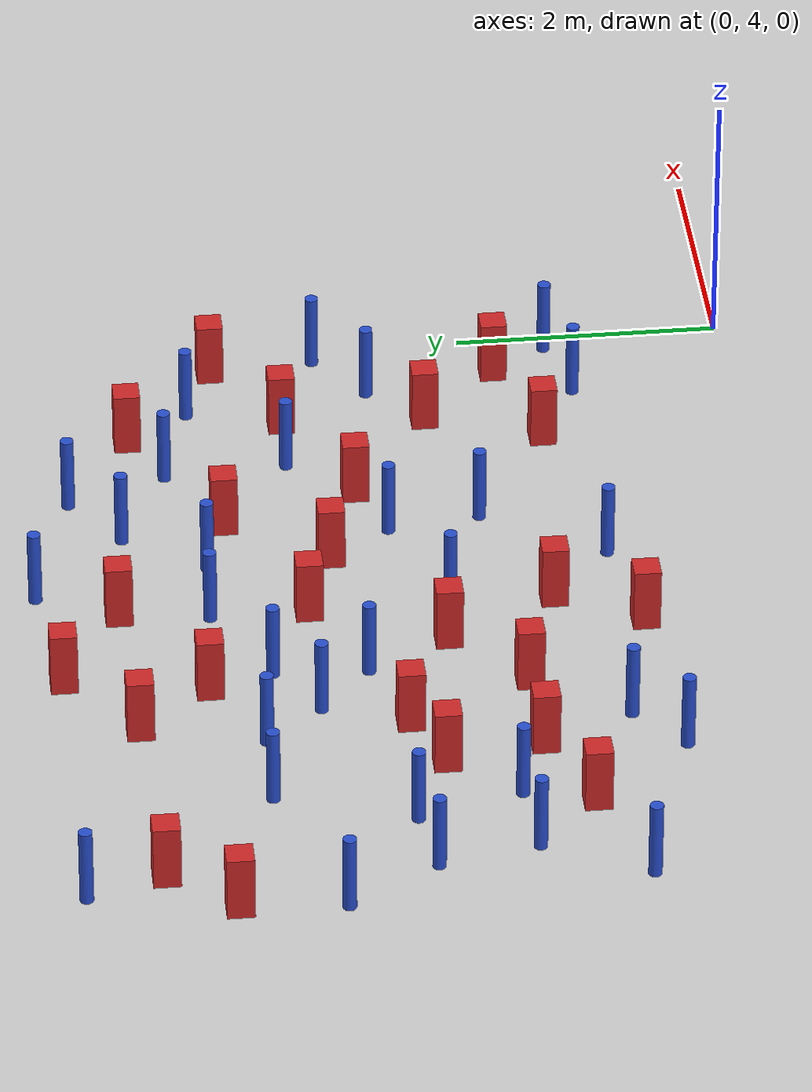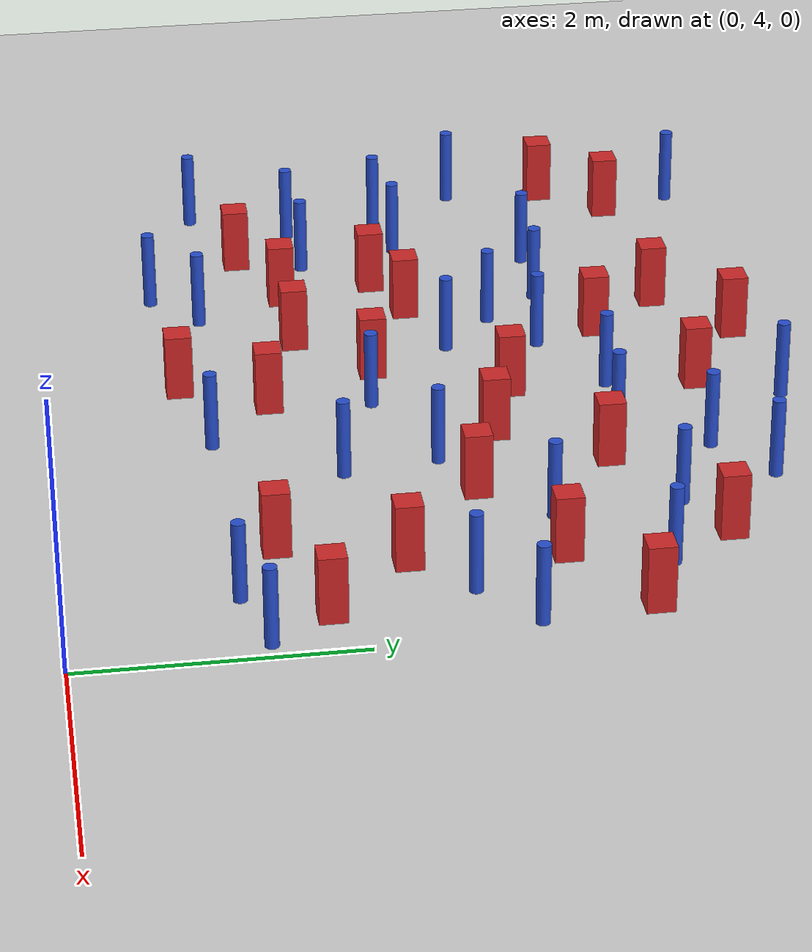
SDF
<sdf version="1.6">
 <world name="default">
  <model name="ground_plane">
   <static>1</static>
   <link name="link">
    <collision name="collision">
     <geometry><plane><normal>0 0 1</normal><size>100 100</size></plane></geometry>
     <surface><friction><ode><mu>100</mu><mu2>50</mu2></ode></friction></surface>
    </collision>
    <visual name="visual">
     <cast_shadows>0</cast_shadows>
     <geometry><plane><normal>0 0 1</normal><size>100 100</size></plane></geometry>
     <material>
      <ambient>1.0 1.0 1.0 1.0</ambient>
      <diffuse>0.8 0.8 0.8 1.0</diffuse>
      <specular>0.01 0.01 0.01 1.000000</specular>
     </material>
    </visual>
   </link>
  </model>
  <model name="pole_obstacle1">
   <static>true</static>
   <pose>-5.75798451812 6.16089119048 7.38925637345e-09 -8.47170692796e-08 1.24976764786e-08 -1.74513093032e-07</pose>
   <link name="link">
    <pose>0 0 0.3 0 -0 0</pose>
    <inertial>
     <mass>1</mass>
     <inertia><ixx>0.145833</ixx><ixy>0</ixy><ixz>0</ixz><iyy>0.145833</iyy><iyz>0</iyz><izz>0.125</izz></inertia>
    </inertial>
    <collision name="collision">
     <geometry><cylinder><radius>0.05</radius><length>.6</length></cylinder></geometry>
    </collision>
    <visual name="visual">
     <geometry><cylinder><radius>0.05</radius><length>.6</length></cylinder></geometry>
     <material>
      <script><name>Gazebo/Blue</name><uri>file://media/materials/scripts/gazebo.material</uri></script>
     </material>
    </visual>
   </link>
  </model>
  <model name="pole_obstacle2">
   <static>true</static>
   <pose>-5.64459293224 7.93843499499 7.38925637345e-09 -8.47170692796e-08 1.24976764786e-08 -1.74513093032e-07</pose>
   <link name="link">
    <pose>0 0 0.3 0 -0 0</pose>
    <inertial>
     <mass>1</mass>
     <inertia><ixx>0.145833</ixx><ixy>0</ixy><ixz>0</ixz><iyy>0.145833</iyy><iyz>0</iyz><izz>0.125</izz></inertia>
    </inertial>
    <collision name="collision">
     <geometry><cylinder><radius>0.05</radius><length>.6</length></cylinder></geometry>
    </collision>
    <visual name="visual">
     <geometry><cylinder><radius>0.05</radius><length>.6</length></cylinder></geometry>
     <material>
      <script><name>Gazebo/Blue</name><uri>file://media/materials/scripts/gazebo.material</uri></script>
     </material>
    </visual>
   </link>
  </model>
  <model name="pole_obstacle6">
   <static>true</static>
   <pose>-0.142269460352 5.34725949788 7.38925637345e-09 -8.47170692799e-08 1.24976765043e-08 -1.74513093019e-07</pose>
   <link name="link">
    <pose>0 0 0.3 0 -0 0</pose>
    <inertial>
     <mass>1</mass>
     <inertia><ixx>0.145833</ixx><ixy>0</ixy><ixz>0</ixz><iyy>0.145833</iyy><iyz>0</iyz><izz>0.125</izz></inertia>
    </inertial>
    <collision name="collision">
     <geometry><cylinder><radius>0.05</radius><length>.6</length></cylinder></geometry>
    </collision>
    <visual name="visual">
     <geometry><cylinder><radius>0.05</radius><length>.6</length></cylinder></geometry>
     <material>
      <script><name>Gazebo/Blue</name><uri>file://media/materials/scripts/gazebo.material</uri></script>
     </material>
    </visual>
   </link>
  </model>
  <model name="square_post_obstacle9">
   <static>true</static>
   <pose>-3.77084339241 5.02417634701 1.91545236811e-07 -7.35059704564e-06 1.12565212e-07 2.39332434364e-05</pose>
   <link name="link">
    <pose>0 0 0.25 0 -0 0</pose>
    <inertial>
     <mass>100</mass>
     <inertia>
      <ixx>0.166667</ixx>
      <ixy>0</ixy>
      <ixz>0</ixz>
      <iyy>0.166667</iyy>
      <iyz>0</iyz>
      <izz>0.166667</izz>
     </inertia>
    </inertial>
    <collision name="collision"><geometry><box><size>.2 .2 .5</size></box></geometry></collision>
    <visual name="visual">
     <geometry><box><size>.2 .2 .5</size></box></geometry>
     <material>
      <script><name>Gazebo/Red</name><uri>file://media/materials/scripts/gazebo.material</uri></script>
     </material>
    </visual>
   </link>
  </model>
  <model name="pole_obstacle9">
   <static>true</static>
   <pose>-2.88459928265 5.19399975139 7.38925637345e-09 -8.47170692798e-08 1.24976765033e-08 -1.74513093019e-07</pose>
   <link name="link">
    <pose>0 0 0.3 0 -0 0</pose>
    <inertial>
     <mass>1</mass>
     <inertia><ixx>0.145833</ixx><ixy>0</ixy><ixz>0</ixz><iyy>0.145833</iyy><iyz>0</iyz><izz>0.125</izz></inertia>
    </inertial>
    <collision name="collision">
     <geometry><cylinder><radius>0.05</radius><length>.6</length></cylinder></geometry>
    </collision>
    <visual name="visual">
     <geometry><cylinder><radius>0.05</radius><length>.6</length></cylinder></geometry>
     <material>
      <script><name>Gazebo/Blue</name><uri>file://media/materials/scripts/gazebo.material</uri></script>
     </material>
    </visual>
   </link>
  </model>
  <model name="square_post_obstacle18">
   <static>true</static>
   <pose>-5.907547881 5.64567180726 1.91545236811e-07 -7.35059704564e-06 1.12565212e-07 2.39332434364e-05</pose>
   <link name="link">
    <pose>0 0 0.25 0 -0 0</pose>
    <inertial>
     <mass>100</mass>
     <inertia>
      <ixx>0.166667</ixx>
      <ixy>0</ixy>
      <ixz>0</ixz>
      <iyy>0.166667</iyy>
      <iyz>0</iyz>
      <izz>0.166667</izz>
     </inertia>
    </inertial>
    <collision name="collision"><geometry><box><size>.2 .2 .5</size></box></geometry></collision>
    <visual name="visual">
     <geometry><box><size>.2 .2 .5</size></box></geometry>
     <material>
      <script><name>Gazebo/Red</name><uri>file://media/materials/scripts/gazebo.material</uri></script>
     </material>
    </visual>
   </link>
  </model>
  <model name="pole_obstacle10">
   <static>true</static>
   <pose>-6.93408362777 7.51889811465 7.38925637345e-09 -8.47170692796e-08 1.24976764786e-08 -1.74513093032e-07</pose>
   <link name="link">
    <pose>0 0 0.3 0 -0 0</pose>
    <inertial>
     <mass>1</mass>
     <inertia><ixx>0.145833</ixx><ixy>0</ixy><ixz>0</ixz><iyy>0.145833</iyy><iyz>0</iyz><izz>0.125</izz></inertia>
    </inertial>
    <collision name="collision">
     <geometry><cylinder><radius>0.05</radius><length>.6</length></cylinder></geometry>
    </collision>
    <visual name="visual">
     <geometry><cylinder><radius>0.05</radius><length>.6</length></cylinder></geometry>
     <material>
      <script><name>Gazebo/Blue</name><uri>file://media/materials/scripts/gazebo.material</uri></script>
     </material>
    </visual>
   </link>
  </model>
  <model name="pole_obstacle11">
   <static>true</static>
   <pose>-3.35549708383 6.42012457529 7.38925637345e-09 -8.47170692794e-08 1.24976764468e-08 -1.7451309304e-07</pose>
   <link name="link">
    <pose>0 0 0.3 0 -0 0</pose>
    <inertial>
     <mass>1</mass>
     <inertia><ixx>0.145833</ixx><ixy>0</ixy><ixz>0</ixz><iyy>0.145833</iyy><iyz>0</iyz><izz>0.125</izz></inertia>
    </inertial>
    <collision name="collision">
     <geometry><cylinder><radius>0.05</radius><length>.6</length></cylinder></geometry>
    </collision>
    <visual name="visual">
     <geometry><cylinder><radius>0.05</radius><length>.6</length></cylinder></geometry>
     <material>
      <script><name>Gazebo/Blue</name><uri>file://media/materials/scripts/gazebo.material</uri></script>
     </material>
    </visual>
   </link>
  </model>
  <model name="pole_obstacle17">
   <static>true</static>
   <pose>-2.78437330864 8.17089390796 7.38925637345e-09 -8.47170692793e-08 1.24976764408e-08 -1.74513093041e-07</pose>
   <link name="link">
    <pose>0 0 0.3 0 -0 0</pose>
    <inertial>
     <mass>1</mass>
     <inertia><ixx>0.145833</ixx><ixy>0</ixy><ixz>0</ixz><iyy>0.145833</iyy><iyz>0</iyz><izz>0.125</izz></inertia>
    </inertial>
    <collision name="collision">
     <geometry><cylinder><radius>0.05</radius><length>.6</length></cylinder></geometry>
    </collision>
    <visual name="visual">
     <geometry><cylinder><radius>0.05</radius><length>.6</length></cylinder></geometry>
     <material>
      <script><name>Gazebo/Blue</name><uri>file://media/materials/scripts/gazebo.material</uri></script>
     </material>
    </visual>
   </link>
  </model>
  <model name="pole_obstacle28">
   <static>true</static>
   <pose>-4.89445261523 5.26536856166 7.38925637345e-09 -8.47170692796e-08 1.24976764786e-08 -1.74513093032e-07</pose>
   <link name="link">
    <pose>0 0 0.3 0 -0 0</pose>
    <inertial>
     <mass>1</mass>
     <inertia><ixx>0.145833</ixx><ixy>0</ixy><ixz>0</ixz><iyy>0.145833</iyy><iyz>0</iyz><izz>0.125</izz></inertia>
    </inertial>
    <collision name="collision">
     <geometry><cylinder><radius>0.05</radius><length>.6</length></cylinder></geometry>
    </collision>
    <visual name="visual">
     <geometry><cylinder><radius>0.05</radius><length>.6</length></cylinder></geometry>
     <material>
      <script><name>Gazebo/Blue</name><uri>file://media/materials/scripts/gazebo.material</uri></script>
     </material>
    </visual>
   </link>
  </model>
  <model name="square_post_obstacle37">
   <static>true</static>
   <pose>-3.42619686603 5.66013530512 1.91545236811e-07 -7.35059704564e-06 1.12565212e-07 2.39332434364e-05</pose>
   <link name="link">
    <pose>0 0 0.25 0 -0 0</pose>
    <inertial>
     <mass>100</mass>
     <inertia>
      <ixx>0.166667</ixx>
      <ixy>0</ixy>
      <ixz>0</ixz>
      <iyy>0.166667</iyy>
      <iyz>0</iyz>
      <izz>0.166667</izz>
     </inertia>
    </inertial>
    <collision name="collision"><geometry><box><size>.2 .2 .5</size></box></geometry></collision>
    <visual name="visual">
     <geometry><box><size>.2 .2 .5</size></box></geometry>
     <material>
      <script><name>Gazebo/Red</name><uri>file://media/materials/scripts/gazebo.material</uri></script>
     </material>
    </visual>
   </link>
  </model>
  <model name="square_post_obstacle41">
   <static>true</static>
   <pose>-1.34152453579 5.49894656143 1.91545236811e-07 -7.35059704564e-06 1.12565212e-07 2.39332434364e-05</pose>
   <link name="link">
    <pose>0 0 0.25 0 -0 0</pose>
    <inertial>
     <mass>100</mass>
     <inertia>
      <ixx>0.166667</ixx>
      <ixy>0</ixy>
      <ixz>0</ixz>
      <iyy>0.166667</iyy>
      <iyz>0</iyz>
      <izz>0.166667</izz>
     </inertia>
    </inertial>
    <collision name="collision"><geometry><box><size>.2 .2 .5</size></box></geometry></collision>
    <visual name="visual">
     <geometry><box><size>.2 .2 .5</size></box></geometry>
     <material>
      <script><name>Gazebo/Red</name><uri>file://media/materials/scripts/gazebo.material</uri></script>
     </material>
    </visual>
   </link>
  </model>
  <model name="pole_obstacle45">
   <static>true</static>
   <pose>-1.87968677476 9.14246488816 7.38925637345e-09 -8.47170692798e-08 1.24976764881e-08 -1.74513093027e-07</pose>
   <link name="link">
    <pose>0 0 0.3 0 -0 0</pose>
    <inertial>
     <mass>1</mass>
     <inertia><ixx>0.145833</ixx><ixy>0</ixy><ixz>0</ixz><iyy>0.145833</iyy><iyz>0</iyz><izz>0.125</izz></inertia>
    </inertial>
    <collision name="collision">
     <geometry><cylinder><radius>0.05</radius><length>.6</length></cylinder></geometry>
    </collision>
    <visual name="visual">
     <geometry><cylinder><radius>0.05</radius><length>.6</length></cylinder></geometry>
     <material>
      <script><name>Gazebo/Blue</name><uri>file://media/materials/scripts/gazebo.material</uri></script>
     </material>
    </visual>
   </link>
  </model>
  <model name="pole_obstacle61">
   <static>true</static>
   <pose>-1.58940500888 8.39699597561 7.38925637345e-09 -8.47170692798e-08 1.24976764881e-08 -1.74513093027e-07</pose>
   <link name="link">
    <pose>0 0 0.3 0 -0 0</pose>
    <inertial>
     <mass>1</mass>
     <inertia><ixx>0.145833</ixx><ixy>0</ixy><ixz>0</ixz><iyy>0.145833</iyy><iyz>0</iyz><izz>0.125</izz></inertia>
    </inertial>
    <collision name="collision">
     <geometry><cylinder><radius>0.05</radius><length>.6</length></cylinder></geometry>
    </collision>
    <visual name="visual">
     <geometry><cylinder><radius>0.05</radius><length>.6</length></cylinder></geometry>
     <material>
      <script><name>Gazebo/Blue</name><uri>file://media/materials/scripts/gazebo.material</uri></script>
     </material>
    </visual>
   </link>
  </model>
  <model name="pole_obstacle63">
   <static>true</static>
   <pose>-2.43554083495 6.78606325257 7.38925637345e-09 -8.47170692798e-08 1.24976765033e-08 -1.74513093019e-07</pose>
   <link name="link">
    <pose>0 0 0.3 0 -0 0</pose>
    <inertial>
     <mass>1</mass>
     <inertia><ixx>0.145833</ixx><ixy>0</ixy><ixz>0</ixz><iyy>0.145833</iyy><iyz>0</iyz><izz>0.125</izz></inertia>
    </inertial>
    <collision name="collision">
     <geometry><cylinder><radius>0.05</radius><length>.6</length></cylinder></geometry>
    </collision>
    <visual name="visual">
     <geometry><cylinder><radius>0.05</radius><length>.6</length></cylinder></geometry>
     <material>
      <script><name>Gazebo/Blue</name><uri>file://media/materials/scripts/gazebo.material</uri></script>
     </material>
    </visual>
   </link>
  </model>
  <model name="square_post_obstacle74">
   <static>true</static>
   <pose>-4.76536382537 8.82146773638 1.91545236811e-07 -7.35059704564e-06 1.12565212e-07 2.39332434364e-05</pose>
   <link name="link">
    <pose>0 0 0.25 0 -0 0</pose>
    <inertial>
     <mass>100</mass>
     <inertia>
      <ixx>0.166667</ixx>
      <ixy>0</ixy>
      <ixz>0</ixz>
      <iyy>0.166667</iyy>
      <iyz>0</iyz>
      <izz>0.166667</izz>
     </inertia>
    </inertial>
    <collision name="collision"><geometry><box><size>.2 .2 .5</size></box></geometry></collision>
    <visual name="visual">
     <geometry><box><size>.2 .2 .5</size></box></geometry>
     <material>
      <script><name>Gazebo/Red</name><uri>file://media/materials/scripts/gazebo.material</uri></script>
     </material>
    </visual>
   </link>
  </model>
  <model name="pole_obstacle69">
   <static>true</static>
   <pose>-6.67104018193 9.34412250246 7.38925637345e-09 -8.471706928e-08 1.24976765081e-08 -1.74513093015e-07</pose>
   <link name="link">
    <pose>0 0 0.3 0 -0 0</pose>
    <inertial>
     <mass>1</mass>
     <inertia><ixx>0.145833</ixx><ixy>0</ixy><ixz>0</ixz><iyy>0.145833</iyy><iyz>0</iyz><izz>0.125</izz></inertia>
    </inertial>
    <collision name="collision">
     <geometry><cylinder><radius>0.05</radius><length>.6</length></cylinder></geometry>
    </collision>
    <visual name="visual">
     <geometry><cylinder><radius>0.05</radius><length>.6</length></cylinder></geometry>
     <material>
      <script><name>Gazebo/Blue</name><uri>file://media/materials/scripts/gazebo.material</uri></script>
     </material>
    </visual>
   </link>
  </model>
  <model name="pole_obstacle79">
   <static>true</static>
   <pose>-6.37893633284 6.10825948809 7.38925637345e-09 -8.47170692796e-08 1.24976764786e-08 -1.74513093032e-07</pose>
   <link name="link">
    <pose>0 0 0.3 0 -0 0</pose>
    <inertial>
     <mass>1</mass>
     <inertia><ixx>0.145833</ixx><ixy>0</ixy><ixz>0</ixz><iyy>0.145833</iyy><iyz>0</iyz><izz>0.125</izz></inertia>
    </inertial>
    <collision name="collision">
     <geometry><cylinder><radius>0.05</radius><length>.6</length></cylinder></geometry>
    </collision>
    <visual name="visual">
     <geometry><cylinder><radius>0.05</radius><length>.6</length></cylinder></geometry>
     <material>
      <script><name>Gazebo/Blue</name><uri>file://media/materials/scripts/gazebo.material</uri></script>
     </material>
    </visual>
   </link>
  </model>
  <model name="pole_obstacle82">
   <static>true</static>
   <pose>-6.76883829647 5.34321811993 7.38925637345e-09 -8.47170692796e-08 1.24976764786e-08 -1.74513093032e-07</pose>
   <link name="link">
    <pose>0 0 0.3 0 -0 0</pose>
    <inertial>
     <mass>1</mass>
     <inertia><ixx>0.145833</ixx><ixy>0</ixy><ixz>0</ixz><iyy>0.145833</iyy><iyz>0</iyz><izz>0.125</izz></inertia>
    </inertial>
    <collision name="collision">
     <geometry><cylinder><radius>0.05</radius><length>.6</length></cylinder></geometry>
    </collision>
    <visual name="visual">
     <geometry><cylinder><radius>0.05</radius><length>.6</length></cylinder></geometry>
     <material>
      <script><name>Gazebo/Blue</name><uri>file://media/materials/scripts/gazebo.material</uri></script>
     </material>
    </visual>
   </link>
  </model>
  <model name="pole_obstacle87">
   <static>true</static>
   <pose>-2.37140153594 8.77700415921 7.38925637345e-09 -8.47170692793e-08 1.24976764408e-08 -1.74513093041e-07</pose>
   <link name="link">
    <pose>0 0 0.3 0 -0 0</pose>
    <inertial>
     <mass>1</mass>
     <inertia><ixx>0.145833</ixx><ixy>0</ixy><ixz>0</ixz><iyy>0.145833</iyy><iyz>0</iyz><izz>0.125</izz></inertia>
    </inertial>
    <collision name="collision">
     <geometry><cylinder><radius>0.05</radius><length>.6</length></cylinder></geometry>
    </collision>
    <visual name="visual">
     <geometry><cylinder><radius>0.05</radius><length>.6</length></cylinder></geometry>
     <material>
      <script><name>Gazebo/Blue</name><uri>file://media/materials/scripts/gazebo.material</uri></script>
     </material>
    </visual>
   </link>
  </model>
  <model name="square_post_obstacle82">
   <static>true</static>
   <pose>-1.11900436968 8.64420854947 1.91545236811e-07 -7.35059704564e-06 1.12565212e-07 2.39332434364e-05</pose>
   <link name="link">
    <pose>0 0 0.25 0 -0 0</pose>
    <inertial>
     <mass>100</mass>
     <inertia>
      <ixx>0.166667</ixx>
      <ixy>0</ixy>
      <ixz>0</ixz>
      <iyy>0.166667</iyy>
      <iyz>0</iyz>
      <izz>0.166667</izz>
     </inertia>
    </inertial>
    <collision name="collision"><geometry><box><size>.2 .2 .5</size></box></geometry></collision>
    <visual name="visual">
     <geometry><box><size>.2 .2 .5</size></box></geometry>
     <material>
      <script><name>Gazebo/Red</name><uri>file://media/materials/scripts/gazebo.material</uri></script>
     </material>
    </visual>
   </link>
  </model>
  <model name="square_post_obstacle83">
   <static>true</static>
   <pose>-2.27208994885 8.00546882071 1.91545236811e-07 -7.35059704564e-06 1.12565212e-07 2.39332434364e-05</pose>
   <link name="link">
    <pose>0 0 0.25 0 -0 0</pose>
    <inertial>
     <mass>100</mass>
     <inertia>
      <ixx>0.166667</ixx>
      <ixy>0</ixy>
      <ixz>0</ixz>
      <iyy>0.166667</iyy>
      <iyz>0</iyz>
      <izz>0.166667</izz>
     </inertia>
    </inertial>
    <collision name="collision"><geometry><box><size>.2 .2 .5</size></box></geometry></collision>
    <visual name="visual">
     <geometry><box><size>.2 .2 .5</size></box></geometry>
     <material>
      <script><name>Gazebo/Red</name><uri>file://media/materials/scripts/gazebo.material</uri></script>
     </material>
    </visual>
   </link>
  </model>
  <model name="pole_obstacle96">
   <static>true</static>
   <pose>-5.98101875136 6.9330406488 7.38925637345e-09 -8.47170692796e-08 1.24976764786e-08 -1.74513093032e-07</pose>
   <link name="link">
    <pose>0 0 0.3 0 -0 0</pose>
    <inertial>
     <mass>1</mass>
     <inertia><ixx>0.145833</ixx><ixy>0</ixy><ixz>0</ixz><iyy>0.145833</iyy><iyz>0</iyz><izz>0.125</izz></inertia>
    </inertial>
    <collision name="collision">
     <geometry><cylinder><radius>0.05</radius><length>.6</length></cylinder></geometry>
    </collision>
    <visual name="visual">
     <geometry><cylinder><radius>0.05</radius><length>.6</length></cylinder></geometry>
     <material>
      <script><name>Gazebo/Blue</name><uri>file://media/materials/scripts/gazebo.material</uri></script>
     </material>
    </visual>
   </link>
  </model>
  <model name="square_post_obstacle84">
   <static>true</static>
   <pose>-3.35060813351 8.87156421134 1.91545236811e-07 -7.35059704564e-06 1.12565212e-07 2.39332434364e-05</pose>
   <link name="link">
    <pose>0 0 0.25 0 -0 0</pose>
    <inertial>
     <mass>100</mass>
     <inertia>
      <ixx>0.166667</ixx>
      <ixy>0</ixy>
      <ixz>0</ixz>
      <iyy>0.166667</iyy>
      <iyz>0</iyz>
      <izz>0.166667</izz>
     </inertia>
    </inertial>
    <collision name="collision"><geometry><box><size>.2 .2 .5</size></box></geometry></collision>
    <visual name="visual">
     <geometry><box><size>.2 .2 .5</size></box></geometry>
     <material>
      <script><name>Gazebo/Red</name><uri>file://media/materials/scripts/gazebo.material</uri></script>
     </material>
    </visual>
   </link>
  </model>
  <model name="square_post_obstacle85">
   <static>true</static>
   <pose>-3.42800563524 7.47565866298 1.91545236811e-07 -7.35059704564e-06 1.12565212e-07 2.39332434364e-05</pose>
   <link name="link">
    <pose>0 0 0.25 0 -0 0</pose>
    <inertial>
     <mass>100</mass>
     <inertia>
      <ixx>0.166667</ixx>
      <ixy>0</ixy>
      <ixz>0</ixz>
      <iyy>0.166667</iyy>
      <iyz>0</iyz>
      <izz>0.166667</izz>
     </inertia>
    </inertial>
    <collision name="collision"><geometry><box><size>.2 .2 .5</size></box></geometry></collision>
    <visual name="visual">
     <geometry><box><size>.2 .2 .5</size></box></geometry>
     <material>
      <script><name>Gazebo/Red</name><uri>file://media/materials/scripts/gazebo.material</uri></script>
     </material>
    </visual>
   </link>
  </model>
  <model name="square_post_obstacle86">
   <static>true</static>
   <pose>-0.988414125935 7.46035929123 1.91545236811e-07 -7.35059704564e-06 1.12565212e-07 2.39332434364e-05</pose>
   <link name="link">
    <pose>0 0 0.25 0 -0 0</pose>
    <inertial>
     <mass>100</mass>
     <inertia>
      <ixx>0.166667</ixx>
      <ixy>0</ixy>
      <ixz>0</ixz>
      <iyy>0.166667</iyy>
      <iyz>0</iyz>
      <izz>0.166667</izz>
     </inertia>
    </inertial>
    <collision name="collision"><geometry><box><size>.2 .2 .5</size></box></geometry></collision>
    <visual name="visual">
     <geometry><box><size>.2 .2 .5</size></box></geometry>
     <material>
      <script><name>Gazebo/Red</name><uri>file://media/materials/scripts/gazebo.material</uri></script>
     </material>
    </visual>
   </link>
  </model>
  <model name="pole_obstacle97">
   <static>true</static>
   <pose>-0.156315826502 7.14604382505 7.38925637345e-09 -8.47170692799e-08 1.24976765043e-08 -1.74513093019e-07</pose>
   <link name="link">
    <pose>0 0 0.3 0 -0 0</pose>
    <inertial>
     <mass>1</mass>
     <inertia><ixx>0.145833</ixx><ixy>0</ixy><ixz>0</ixz><iyy>0.145833</iyy><iyz>0</iyz><izz>0.125</izz></inertia>
    </inertial>
    <collision name="collision">
     <geometry><cylinder><radius>0.05</radius><length>.6</length></cylinder></geometry>
    </collision>
    <visual name="visual">
     <geometry><cylinder><radius>0.05</radius><length>.6</length></cylinder></geometry>
     <material>
      <script><name>Gazebo/Blue</name><uri>file://media/materials/scripts/gazebo.material</uri></script>
     </material>
    </visual>
   </link>
  </model>
  <model name="square_post_obstacle91">
   <static>true</static>
   <pose>-1.03266431261 6.36968380074 1.91545236811e-07 -7.35059704564e-06 1.12565212e-07 2.39332434364e-05</pose>
   <link name="link">
    <pose>0 0 0.25 0 -0 0</pose>
    <inertial>
     <mass>100</mass>
     <inertia>
      <ixx>0.166667</ixx>
      <ixy>0</ixy>
      <ixz>0</ixz>
      <iyy>0.166667</iyy>
      <iyz>0</iyz>
      <izz>0.166667</izz>
     </inertia>
    </inertial>
    <collision name="collision"><geometry><box><size>.2 .2 .5</size></box></geometry></collision>
    <visual name="visual">
     <geometry><box><size>.2 .2 .5</size></box></geometry>
     <material>
      <script><name>Gazebo/Red</name><uri>file://media/materials/scripts/gazebo.material</uri></script>
     </material>
    </visual>
   </link>
  </model>
  <model name="square_post_obstacle95">
   <static>true</static>
   <pose>-4.42673206477 5.95637237986 1.91545236811e-07 -7.35059704564e-06 1.12565212e-07 2.39332434364e-05</pose>
   <link name="link">
    <pose>0 0 0.25 0 -0 0</pose>
    <inertial>
     <mass>100</mass>
     <inertia>
      <ixx>0.166667</ixx>
      <ixy>0</ixy>
      <ixz>0</ixz>
      <iyy>0.166667</iyy>
      <iyz>0</iyz>
      <izz>0.166667</izz>
     </inertia>
    </inertial>
    <collision name="collision"><geometry><box><size>.2 .2 .5</size></box></geometry></collision>
    <visual name="visual">
     <geometry><box><size>.2 .2 .5</size></box></geometry>
     <material>
      <script><name>Gazebo/Red</name><uri>file://media/materials/scripts/gazebo.material</uri></script>
     </material>
    </visual>
   </link>
  </model>
  <model name="pole_obstacle108">
   <static>true</static>
   <pose>-4.18735906118 7.10542070908 7.38925637345e-09 -8.47170692796e-08 1.24976764786e-08 -1.74513093032e-07</pose>
   <link name="link">
    <pose>0 0 0.3 0 -0 0</pose>
    <inertial>
     <mass>1</mass>
     <inertia><ixx>0.145833</ixx><ixy>0</ixy><ixz>0</ixz><iyy>0.145833</iyy><iyz>0</iyz><izz>0.125</izz></inertia>
    </inertial>
    <collision name="collision">
     <geometry><cylinder><radius>0.05</radius><length>.6</length></cylinder></geometry>
    </collision>
    <visual name="visual">
     <geometry><cylinder><radius>0.05</radius><length>.6</length></cylinder></geometry>
     <material>
      <script><name>Gazebo/Blue</name><uri>file://media/materials/scripts/gazebo.material</uri></script>
     </material>
    </visual>
   </link>
  </model>
  <model name="square_post_obstacle97">
   <static>true</static>
   <pose>-6.48767562546 8.76947307244 1.91545236811e-07 -7.35059704564e-06 1.12565212e-07 2.39332434364e-05</pose>
   <link name="link">
    <pose>0 0 0.25 0 -0 0</pose>
    <inertial>
     <mass>100</mass>
     <inertia>
      <ixx>0.166667</ixx>
      <ixy>0</ixy>
      <ixz>0</ixz>
      <iyy>0.166667</iyy>
      <iyz>0</iyz>
      <izz>0.166667</izz>
     </inertia>
    </inertial>
    <collision name="collision"><geometry><box><size>.2 .2 .5</size></box></geometry></collision>
    <visual name="visual">
     <geometry><box><size>.2 .2 .5</size></box></geometry>
     <material>
      <script><name>Gazebo/Red</name><uri>file://media/materials/scripts/gazebo.material</uri></script>
     </material>
    </visual>
   </link>
  </model>
  <model name="square_post_obstacle98">
   <static>true</static>
   <pose>-6.88664513375 8.28502717384 1.91545236811e-07 -7.35059704564e-06 1.12565212e-07 2.39332434364e-05</pose>
   <link name="link">
    <pose>0 0 0.25 0 -0 0</pose>
    <inertial>
     <mass>100</mass>
     <inertia>
      <ixx>0.166667</ixx>
      <ixy>0</ixy>
      <ixz>0</ixz>
      <iyy>0.166667</iyy>
      <iyz>0</iyz>
      <izz>0.166667</izz>
     </inertia>
    </inertial>
    <collision name="collision"><geometry><box><size>.2 .2 .5</size></box></geometry></collision>
    <visual name="visual">
     <geometry><box><size>.2 .2 .5</size></box></geometry>
     <material>
      <script><name>Gazebo/Red</name><uri>file://media/materials/scripts/gazebo.material</uri></script>
     </material>
    </visual>
   </link>
  </model>
  <model name="square_post_obstacle100">
   <static>true</static>
   <pose>-3.86610409709 6.48951473406 1.91545236811e-07 -7.35059704564e-06 1.12565212e-07 2.39332434364e-05</pose>
   <link name="link">
    <pose>0 0 0.25 0 -0 0</pose>
    <inertial>
     <mass>100</mass>
     <inertia>
      <ixx>0.166667</ixx>
      <ixy>0</ixy>
      <ixz>0</ixz>
      <iyy>0.166667</iyy>
      <iyz>0</iyz>
      <izz>0.166667</izz>
     </inertia>
    </inertial>
    <collision name="collision"><geometry><box><size>.2 .2 .5</size></box></geometry></collision>
    <visual name="visual">
     <geometry><box><size>.2 .2 .5</size></box></geometry>
     <material>
      <script><name>Gazebo/Red</name><uri>file://media/materials/scripts/gazebo.material</uri></script>
     </material>
    </visual>
   </link>
  </model>
  <model name="pole_obstacle131">
   <static>true</static>
   <pose>-6.53478810473 6.84542863954 7.38925637345e-09 -8.47170692796e-08 1.24976764786e-08 -1.74513093032e-07</pose>
   <link name="link">
    <pose>0 0 0.3 0 -0 0</pose>
    <inertial>
     <mass>1</mass>
     <inertia><ixx>0.145833</ixx><ixy>0</ixy><ixz>0</ixz><iyy>0.145833</iyy><iyz>0</iyz><izz>0.125</izz></inertia>
    </inertial>
    <collision name="collision">
     <geometry><cylinder><radius>0.05</radius><length>.6</length></cylinder></geometry>
    </collision>
    <visual name="visual">
     <geometry><cylinder><radius>0.05</radius><length>.6</length></cylinder></geometry>
     <material>
      <script><name>Gazebo/Blue</name><uri>file://media/materials/scripts/gazebo.material</uri></script>
     </material>
    </visual>
   </link>
  </model>
  <model name="pole_obstacle136">
   <static>true</static>
   <pose>-4.15243492606 7.80592799234 7.38925637345e-09 -8.47170692796e-08 1.24976764786e-08 -1.74513093032e-07</pose>
   <link name="link">
    <pose>0 0 0.3 0 -0 0</pose>
    <inertial>
     <mass>1</mass>
     <inertia><ixx>0.145833</ixx><ixy>0</ixy><ixz>0</ixz><iyy>0.145833</iyy><iyz>0</iyz><izz>0.125</izz></inertia>
    </inertial>
    <collision name="collision">
     <geometry><cylinder><radius>0.05</radius><length>.6</length></cylinder></geometry>
    </collision>
    <visual name="visual">
     <geometry><cylinder><radius>0.05</radius><length>.6</length></cylinder></geometry>
     <material>
      <script><name>Gazebo/Blue</name><uri>file://media/materials/scripts/gazebo.material</uri></script>
     </material>
    </visual>
   </link>
  </model>
  <model name="square_post_obstacle125">
   <static>true</static>
   <pose>-5.20243479886 5.93662319989 1.91545236811e-07 -7.35059704564e-06 1.12565212e-07 2.39332434364e-05</pose>
   <link name="link">
    <pose>0 0 0.25 0 -0 0</pose>
    <inertial>
     <mass>100</mass>
     <inertia>
      <ixx>0.166667</ixx>
      <ixy>0</ixy>
      <ixz>0</ixz>
      <iyy>0.166667</iyy>
      <iyz>0</iyz>
      <izz>0.166667</izz>
     </inertia>
    </inertial>
    <collision name="collision"><geometry><box><size>.2 .2 .5</size></box></geometry></collision>
    <visual name="visual">
     <geometry><box><size>.2 .2 .5</size></box></geometry>
     <material>
      <script><name>Gazebo/Red</name><uri>file://media/materials/scripts/gazebo.material</uri></script>
     </material>
    </visual>
   </link>
  </model>
  <model name="pole_obstacle141">
   <static>true</static>
   <pose>-1.5231165602 7.46920556226 7.38925637345e-09 -8.47170692799e-08 1.24976765033e-08 -1.74513093018e-07</pose>
   <link name="link">
    <pose>0 0 0.3 0 -0 0</pose>
    <inertial>
     <mass>1</mass>
     <inertia><ixx>0.145833</ixx><ixy>0</ixy><ixz>0</ixz><iyy>0.145833</iyy><iyz>0</iyz><izz>0.125</izz></inertia>
    </inertial>
    <collision name="collision">
     <geometry><cylinder><radius>0.05</radius><length>.6</length></cylinder></geometry>
    </collision>
    <visual name="visual">
     <geometry><cylinder><radius>0.05</radius><length>.6</length></cylinder></geometry>
     <material>
      <script><name>Gazebo/Blue</name><uri>file://media/materials/scripts/gazebo.material</uri></script>
     </material>
    </visual>
   </link>
  </model>
  <model name="pole_obstacle142">
   <static>true</static>
   <pose>-0.622417328365 6.77340470253 7.38925637345e-09 -8.471706928e-08 1.24976765086e-08 -1.74513093015e-07</pose>
   <link name="link">
    <pose>0 0 0.3 0 -0 0</pose>
    <inertial>
     <mass>1</mass>
     <inertia><ixx>0.145833</ixx><ixy>0</ixy><ixz>0</ixz><iyy>0.145833</iyy><iyz>0</iyz><izz>0.125</izz></inertia>
    </inertial>
    <collision name="collision">
     <geometry><cylinder><radius>0.05</radius><length>.6</length></cylinder></geometry>
    </collision>
    <visual name="visual">
     <geometry><cylinder><radius>0.05</radius><length>.6</length></cylinder></geometry>
     <material>
      <script><name>Gazebo/Blue</name><uri>file://media/materials/scripts/gazebo.material</uri></script>
     </material>
    </visual>
   </link>
  </model>
  <model name="pole_obstacle144">
   <static>true</static>
   <pose>-2.32665196636 6.08980882244 7.38925637345e-09 -8.47170692798e-08 1.24976765033e-08 -1.74513093019e-07</pose>
   <link name="link">
    <pose>0 0 0.3 0 -0 0</pose>
    <inertial>
     <mass>1</mass>
     <inertia><ixx>0.145833</ixx><ixy>0</ixy><ixz>0</ixz><iyy>0.145833</iyy><iyz>0</iyz><izz>0.125</izz></inertia>
    </inertial>
    <collision name="collision">
     <geometry><cylinder><radius>0.05</radius><length>.6</length></cylinder></geometry>
    </collision>
    <visual name="visual">
     <geometry><cylinder><radius>0.05</radius><length>.6</length></cylinder></geometry>
     <material>
      <script><name>Gazebo/Blue</name><uri>file://media/materials/scripts/gazebo.material</uri></script>
     </material>
    </visual>
   </link>
  </model>
  <model name="pole_obstacle161">
   <static>true</static>
   <pose>-5.29740495183 4.91374368746 7.38925637345e-09 -8.47170692796e-08 1.24976764786e-08 -1.74513093032e-07</pose>
   <link name="link">
    <pose>0 0 0.3 0 -0 0</pose>
    <inertial>
     <mass>1</mass>
     <inertia><ixx>0.145833</ixx><ixy>0</ixy><ixz>0</ixz><iyy>0.145833</iyy><iyz>0</iyz><izz>0.125</izz></inertia>
    </inertial>
    <collision name="collision">
     <geometry><cylinder><radius>0.05</radius><length>.6</length></cylinder></geometry>
    </collision>
    <visual name="visual">
     <geometry><cylinder><radius>0.05</radius><length>.6</length></cylinder></geometry>
     <material>
      <script><name>Gazebo/Blue</name><uri>file://media/materials/scripts/gazebo.material</uri></script>
     </material>
    </visual>
   </link>
  </model>
  <model name="pole_obstacle163">
   <static>true</static>
   <pose>-3.41697676312 8.20202176524 7.38925637345e-09 -8.47170692793e-08 1.24976764408e-08 -1.74513093041e-07</pose>
   <link name="link">
    <pose>0 0 0.3 0 -0 0</pose>
    <inertial>
     <mass>1</mass>
     <inertia><ixx>0.145833</ixx><ixy>0</ixy><ixz>0</ixz><iyy>0.145833</iyy><iyz>0</iyz><izz>0.125</izz></inertia>
    </inertial>
    <collision name="collision">
     <geometry><cylinder><radius>0.05</radius><length>.6</length></cylinder></geometry>
    </collision>
    <visual name="visual">
     <geometry><cylinder><radius>0.05</radius><length>.6</length></cylinder></geometry>
     <material>
      <script><name>Gazebo/Blue</name><uri>file://media/materials/scripts/gazebo.material</uri></script>
     </material>
    </visual>
   </link>
  </model>
  <model name="square_post_obstacle163">
   <static>true</static>
   <pose>-0.251647175491 7.94426131262 1.91545236811e-07 -7.35059704564e-06 1.12565212e-07 2.39332434364e-05</pose>
   <link name="link">
    <pose>0 0 0.25 0 -0 0</pose>
    <inertial>
     <mass>100</mass>
     <inertia>
      <ixx>0.166667</ixx>
      <ixy>0</ixy>
      <ixz>0</ixz>
      <iyy>0.166667</iyy>
      <iyz>0</iyz>
      <izz>0.166667</izz>
     </inertia>
    </inertial>
    <collision name="collision"><geometry><box><size>.2 .2 .5</size></box></geometry></collision>
    <visual name="visual">
     <geometry><box><size>.2 .2 .5</size></box></geometry>
     <material>
      <script><name>Gazebo/Red</name><uri>file://media/materials/scripts/gazebo.material</uri></script>
     </material>
    </visual>
   </link>
  </model>
  <model name="pole_obstacle180">
   <static>true</static>
   <pose>-4.61633690853 7.49397215633 7.38925637345e-09 -8.47170692796e-08 1.24976764786e-08 -1.74513093032e-07</pose>
   <link name="link">
    <pose>0 0 0.3 0 -0 0</pose>
    <inertial>
     <mass>1</mass>
     <inertia><ixx>0.145833</ixx><ixy>0</ixy><ixz>0</ixz><iyy>0.145833</iyy><iyz>0</iyz><izz>0.125</izz></inertia>
    </inertial>
    <collision name="collision">
     <geometry><cylinder><radius>0.05</radius><length>.6</length></cylinder></geometry>
    </collision>
    <visual name="visual">
     <geometry><cylinder><radius>0.05</radius><length>.6</length></cylinder></geometry>
     <material>
      <script><name>Gazebo/Blue</name><uri>file://media/materials/scripts/gazebo.material</uri></script>
     </material>
    </visual>
   </link>
  </model>
  <model name="pole_obstacle181">
   <static>true</static>
   <pose>-4.96822208703 7.92233773187 7.38925637345e-09 -8.47170692796e-08 1.24976764786e-08 -1.74513093032e-07</pose>
   <link name="link">
    <pose>0 0 0.3 0 -0 0</pose>
    <inertial>
     <mass>1</mass>
     <inertia><ixx>0.145833</ixx><ixy>0</ixy><ixz>0</ixz><iyy>0.145833</iyy><iyz>0</iyz><izz>0.125</izz></inertia>
    </inertial>
    <collision name="collision">
     <geometry><cylinder><radius>0.05</radius><length>.6</length></cylinder></geometry>
    </collision>
    <visual name="visual">
     <geometry><cylinder><radius>0.05</radius><length>.6</length></cylinder></geometry>
     <material>
      <script><name>Gazebo/Blue</name><uri>file://media/materials/scripts/gazebo.material</uri></script>
     </material>
    </visual>
   </link>
  </model>
  <model name="pole_obstacle184">
   <static>true</static>
   <pose>-0.781159660362 8.1681128387 7.38925637345e-09 -8.47170692797e-08 1.249767648e-08 -1.74513093032e-07</pose>
   <link name="link">
    <pose>0 0 0.3 0 -0 0</pose>
    <inertial>
     <mass>1</mass>
     <inertia><ixx>0.145833</ixx><ixy>0</ixy><ixz>0</ixz><iyy>0.145833</iyy><iyz>0</iyz><izz>0.125</izz></inertia>
    </inertial>
    <collision name="collision">
     <geometry><cylinder><radius>0.05</radius><length>.6</length></cylinder></geometry>
    </collision>
    <visual name="visual">
     <geometry><cylinder><radius>0.05</radius><length>.6</length></cylinder></geometry>
     <material>
      <script><name>Gazebo/Blue</name><uri>file://media/materials/scripts/gazebo.material</uri></script>
     </material>
    </visual>
   </link>
  </model>
  <model name="pole_obstacle185">
   <static>true</static>
   <pose>-0.740523379472 5.19653497039 7.38925637345e-09 -8.471706928e-08 1.24976765086e-08 -1.74513093015e-07</pose>
   <link name="link">
    <pose>0 0 0.3 0 -0 0</pose>
    <inertial>
     <mass>1</mass>
     <inertia><ixx>0.145833</ixx><ixy>0</ixy><ixz>0</ixz><iyy>0.145833</iyy><iyz>0</iyz><izz>0.125</izz></inertia>
    </inertial>
    <collision name="collision">
     <geometry><cylinder><radius>0.05</radius><length>.6</length></cylinder></geometry>
    </collision>
    <visual name="visual">
     <geometry><cylinder><radius>0.05</radius><length>.6</length></cylinder></geometry>
     <material>
      <script><name>Gazebo/Blue</name><uri>file://media/materials/scripts/gazebo.material</uri></script>
     </material>
    </visual>
   </link>
  </model>
  <model name="square_post_obstacle178">
   <static>true</static>
   <pose>-5.35434901845 6.66248546688 1.91545236811e-07 -7.35059704564e-06 1.12565212e-07 2.39332434364e-05</pose>
   <link name="link">
    <pose>0 0 0.25 0 -0 0</pose>
    <inertial>
     <mass>100</mass>
     <inertia>
      <ixx>0.166667</ixx>
      <ixy>0</ixy>
      <ixz>0</ixz>
      <iyy>0.166667</iyy>
      <iyz>0</iyz>
      <izz>0.166667</izz>
     </inertia>
    </inertial>
    <collision name="collision"><geometry><box><size>.2 .2 .5</size></box></geometry></collision>
    <visual name="visual">
     <geometry><box><size>.2 .2 .5</size></box></geometry>
     <material>
      <script><name>Gazebo/Red</name><uri>file://media/materials/scripts/gazebo.material</uri></script>
     </material>
    </visual>
   </link>
  </model>
  <model name="square_post_obstacle181">
   <static>true</static>
   <pose>-4.13735686708 9.33054230721 1.91545236811e-07 -7.35059704564e-06 1.12565212e-07 2.39332434364e-05</pose>
   <link name="link">
    <pose>0 0 0.25 0 -0 0</pose>
    <inertial>
     <mass>100</mass>
     <inertia>
      <ixx>0.166667</ixx>
      <ixy>0</ixy>
      <ixz>0</ixz>
      <iyy>0.166667</iyy>
      <iyz>0</iyz>
      <izz>0.166667</izz>
     </inertia>
    </inertial>
    <collision name="collision"><geometry><box><size>.2 .2 .5</size></box></geometry></collision>
    <visual name="visual">
     <geometry><box><size>.2 .2 .5</size></box></geometry>
     <material>
      <script><name>Gazebo/Red</name><uri>file://media/materials/scripts/gazebo.material</uri></script>
     </material>
    </visual>
   </link>
  </model>
  <model name="square_post_obstacle188">
   <static>true</static>
   <pose>-4.321123986 8.28048766208 1.91545236811e-07 -7.35059704564e-06 1.12565212e-07 2.39332434364e-05</pose>
   <link name="link">
    <pose>0 0 0.25 0 -0 0</pose>
    <inertial>
     <mass>100</mass>
     <inertia>
      <ixx>0.166667</ixx>
      <ixy>0</ixy>
      <ixz>0</ixz>
      <iyy>0.166667</iyy>
      <iyz>0</iyz>
      <izz>0.166667</izz>
     </inertia>
    </inertial>
    <collision name="collision"><geometry><box><size>.2 .2 .5</size></box></geometry></collision>
    <visual name="visual">
     <geometry><box><size>.2 .2 .5</size></box></geometry>
     <material>
      <script><name>Gazebo/Red</name><uri>file://media/materials/scripts/gazebo.material</uri></script>
     </material>
    </visual>
   </link>
  </model>
  <model name="square_post_obstacle212">
   <static>true</static>
   <pose>-1.94292241732 6.98759090416 1.91545236811e-07 -7.35059704564e-06 1.12565212e-07 2.39332434364e-05</pose>
   <link name="link">
    <pose>0 0 0.25 0 -0 0</pose>
    <inertial>
     <mass>100</mass>
     <inertia>
      <ixx>0.166667</ixx>
      <ixy>0</ixy>
      <ixz>0</ixz>
      <iyy>0.166667</iyy>
      <iyz>0</iyz>
      <izz>0.166667</izz>
     </inertia>
    </inertial>
    <collision name="collision"><geometry><box><size>.2 .2 .5</size></box></geometry></collision>
    <visual name="visual">
     <geometry><box><size>.2 .2 .5</size></box></geometry>
     <material>
      <script><name>Gazebo/Red</name><uri>file://media/materials/scripts/gazebo.material</uri></script>
     </material>
    </visual>
   </link>
  </model>
  <model name="square_post_obstacle216">
   <static>true</static>
   <pose>-0.440192145262 5.77910990705 1.91545236811e-07 -7.35059704564e-06 1.12565212e-07 2.39332434364e-05</pose>
   <link name="link">
    <pose>0 0 0.25 0 -0 0</pose>
    <inertial>
     <mass>100</mass>
     <inertia>
      <ixx>0.166667</ixx>
      <ixy>0</ixy>
      <ixz>0</ixz>
      <iyy>0.166667</iyy>
      <iyz>0</iyz>
      <izz>0.166667</izz>
     </inertia>
    </inertial>
    <collision name="collision"><geometry><box><size>.2 .2 .5</size></box></geometry></collision>
    <visual name="visual">
     <geometry><box><size>.2 .2 .5</size></box></geometry>
     <material>
      <script><name>Gazebo/Red</name><uri>file://media/materials/scripts/gazebo.material</uri></script>
     </material>
    </visual>
   </link>
  </model>
  <model name="square_post_obstacle223">
   <static>true</static>
   <pose>-2.76987506316 7.25031692408 1.91545236811e-07 -7.35059704564e-06 1.12565212e-07 2.39332434364e-05</pose>
   <link name="link">
    <pose>0 0 0.25 0 -0 0</pose>
    <inertial>
     <mass>100</mass>
     <inertia>
      <ixx>0.166667</ixx>
      <ixy>0</ixy>
      <ixz>0</ixz>
      <iyy>0.166667</iyy>
      <iyz>0</iyz>
      <izz>0.166667</izz>
     </inertia>
    </inertial>
    <collision name="collision"><geometry><box><size>.2 .2 .5</size></box></geometry></collision>
    <visual name="visual">
     <geometry><box><size>.2 .2 .5</size></box></geometry>
     <material>
      <script><name>Gazebo/Red</name><uri>file://media/materials/scripts/gazebo.material</uri></script>
     </material>
    </visual>
   </link>
  </model>
  <model name="square_post_obstacle234">
   <static>true</static>
   <pose>-4.84754789063 6.87123606067 1.91545236811e-07 -7.35059704564e-06 1.12565212e-07 2.39332434364e-05</pose>
   <link name="link">
    <pose>0 0 0.25 0 -0 0</pose>
    <inertial>
     <mass>100</mass>
     <inertia>
      <ixx>0.166667</ixx>
      <ixy>0</ixy>
      <ixz>0</ixz>
      <iyy>0.166667</iyy>
      <iyz>0</iyz>
      <izz>0.166667</izz>
     </inertia>
    </inertial>
    <collision name="collision"><geometry><box><size>.2 .2 .5</size></box></geometry></collision>
    <visual name="visual">
     <geometry><box><size>.2 .2 .5</size></box></geometry>
     <material>
      <script><name>Gazebo/Red</name><uri>file://media/materials/scripts/gazebo.material</uri></script>
     </material>
    </visual>
   </link>
  </model>
  <model name="pole_obstacle199">
   <static>true</static>
   <pose>-3.06077598523 9.46702866885 7.38925637345e-09 -8.47170692799e-08 1.24976765012e-08 -1.74513093021e-07</pose>
   <link name="link">
    <pose>0 0 0.3 0 -0 0</pose>
    <inertial>
     <mass>1</mass>
     <inertia><ixx>0.145833</ixx><ixy>0</ixy><ixz>0</ixz><iyy>0.145833</iyy><iyz>0</iyz><izz>0.125</izz></inertia>
    </inertial>
    <collision name="collision">
     <geometry><cylinder><radius>0.05</radius><length>.6</length></cylinder></geometry>
    </collision>
    <visual name="visual">
     <geometry><cylinder><radius>0.05</radius><length>.6</length></cylinder></geometry>
     <material>
      <script><name>Gazebo/Blue</name><uri>file://media/materials/scripts/gazebo.material</uri></script>
     </material>
    </visual>
   </link>
  </model>
 </world>
</sdf>
